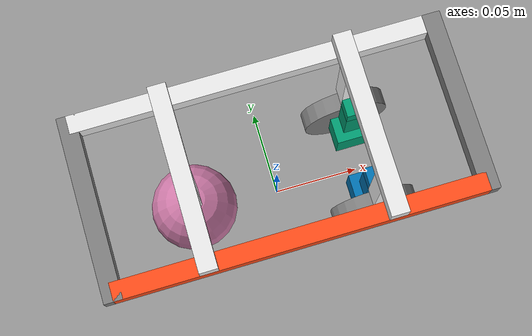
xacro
<?xml version="1.0"?>
<robot xmlns:xacro="http://www.ros.org/wiki/xacro" name="robot" >

	<xacro:include filename="robot_core.xacro" />

	<gazebo>
        <plugin name="gazebo_ros_control" filename="libgazebo_ros_control.so">
          <robotNamespace>/</robotNamespace>
        </plugin>
    </gazebo>

</robot>

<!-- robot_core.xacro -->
<robot xmlns:xacro="http://www.ros.org/wiki/xacro" >

	<xacro:include filename="inertial_macros.xacro" />

    <material name="white">
        <color rgba="1 1 1 1" />
    </material>

    <material name="orange">
        <color rgba="1 0.3 0.1 1"/>
    </material>

    <material name="blue">
        <color rgba="0.2 0.2 1 1"/>
    </material>

    <material name="black">
        <color rgba="0 0 0 1"/>
    </material>

    <material name="red">
        <color rgba="1 0 0 1"/>
    </material>

    <material name="grey">
        <color rgba="0.5 0.5 0.5 1"/>
    </material>

    <!-- Chassis -->

    <xacro:property name="chassis_length" value="0.2"/>
    <xacro:property name="chassis_width" value="0.1"/>
    <xacro:property name="chassis_thickness" value="0.01"/>
    <xacro:property name="front_base_length" value="0.05"/>
    <xacro:property name="back_base_length" value="0.05"/>
    <xacro:property name="a" value="0.02"/>

	<!-- Create fixed world frame -->

	<link name="world"></link>

	<joint name="world_joint" type="floating">
		<parent link="world"></parent>
		<child link="chassis"></child>
		<origin xyz="0 0 0.1"></origin>
	</joint>

    <link name="chassis">
		<visual>
            <geometry>
                <box size="${chassis_length} ${chassis_thickness} ${chassis_thickness}"/>
            </geometry>
            <material name="orange"/>
            <origin xyz="0 ${-chassis_width/2 +chassis_thickness/2} 0"/>
        </visual>
        <visual>
            <geometry>
                <box size="${chassis_length} ${chassis_thickness} ${chassis_thickness}"/>
            </geometry>
            <origin xyz="0 ${chassis_width/2 -chassis_thickness/2} 0"/>
        </visual>
        <visual>
            <geometry>
                <box size="${chassis_thickness} ${chassis_width} ${chassis_thickness}"/>
            </geometry>
            <material name="grey"/>
            <origin xyz="${-chassis_length/2} 0 0"/>
        </visual>
        <visual>
            <geometry>
                <box size="${chassis_thickness} ${chassis_width} ${chassis_thickness}"/>
            </geometry>
            <material name="grey"/>
            <origin xyz="${chassis_length/2} 0 0"/>
        </visual>
        <visual>
            <geometry>
                <box size="${chassis_thickness} ${chassis_width} ${chassis_thickness}"/>
            </geometry>
            <origin xyz="${front_base_length} 0 ${chassis_thickness}"/>
        </visual>
        <visual>
            <geometry>
                <box size="${chassis_thickness} ${chassis_width} ${chassis_thickness}"/>
            </geometry>
            <origin xyz="${-back_base_length} 0 ${chassis_thickness}"/>
        </visual>
        <inertial>
			<mass value="1"/>
			<inertia ixx="1e-3" ixy="0.0" ixz="0.0" iyy="1e-3" iyz="0.0" izz="1e-3"/>
		</inertial>
    </link>

    <gazebo reference="chassis">
		<material>Gazebo/White</material>
    </gazebo>

    <xacro:property name="l1" value="0.04"/>
    <xacro:property name="l2" value="0.01"/>
    <xacro:property name="l3" value="0.025"/>
    <xacro:property name="thickness" value="0.01"/>
    <xacro:property name="motor_side" value="0.02"/>

    <!-- Left_wheel_base-->

    <link name="left_wheel_base">
        <visual>
            <geometry>
                <box size="${l1} ${thickness} ${thickness}" />
            </geometry>
            <origin xyz="${-l1/2} 0 0"/>
            <material name="white"/>
        </visual>
        <xacro:inertial_box mass="0.5" x="0.3" y="0.3" z="0.15">
			<origin xyz="0 ${-chassis_width/2 +chassis_thickness/2} 0" rpy="0 0 0"/>
        </xacro:inertial_box>
        <visual>
            <geometry>
                <box size="${thickness} ${l2} ${thickness}"/>
            </geometry>
            <origin xyz="${-l1+thickness/2} ${-l2/2-thickness/2} 0.0" rpy="0.0 0.0 0.0"/>
        </visual>
        <visual>
            <geometry>
                <box size="${l3} ${thickness} ${thickness}"/>
            </geometry>
            <origin xyz="${-l1-l3/2} ${-l2} 0.0" rpy="0.0 0.0 0.0"/>
        </visual>
        <visual>
            <geometry>
                <box size="${motor_side} ${motor_side} ${motor_side}"/>
            </geometry>
            <origin xyz="${-l1-l3-motor_side/2} ${-l2} 0.0" rpy="0.0 0.0 0.0"/>

        </visual>
        <inertial>
			<mass value="1"/>
			<inertia ixx="1e-3" ixy="0.0" ixz="0.0" iyy="1e-3" iyz="0.0" izz="1e-3"/>
		</inertial>
    </link>

    <gazebo reference="left_wheel_base_joint">
		<material>Gazebo/Blue</material>
    </gazebo>

    <joint name="left_wheel_base_joint" type="continuous">
        <parent link="chassis"/>
        <child link="left_wheel_base"/>
        <origin xyz="${front_base_length} ${chassis_width/2-a} ${chassis_thickness/2}" rpy="0.0 ${-pi/2} 0.0"/>

    </joint>

    <!-- Left_wheel-->

    <xacro:property name="wheel_radius" value="0.025"/>
    <xacro:property name="wheel_length" value="0.01"/>

    <link name="left_wheel">
        <visual>
            <geometry>
                <box size="${thickness} ${l2-wheel_length/2-motor_side/2} ${thickness}"/>
            </geometry>
            <origin xyz="0 ${-(l2-wheel_length/2-motor_side/2+wheel_length)/2} 0"/>
			<material name="grey"/>

        </visual>
        <visual>
            <geometry>
                <cylinder radius="${wheel_radius}" length="${wheel_length}"/>
            </geometry>
            <origin xyz="0 0 0.0" rpy="${pi/2} 0.0 0.0"/>
			<material name="grey"/>
        </visual>
    </link>

    <joint name="left_wheel_joint" type="continuous">
        <parent link="left_wheel_base"/>
        <child link="left_wheel"/>
        <origin xyz="${-l1-l3-motor_side/2} ${0} 0"/>
        <axis xyz="0 1 0"/>

    </joint>

    <!-- right_wheel_base-->

    <link name="right_wheel_base">
        <visual>
            <geometry>
                <box size="${l1} ${thickness} ${thickness}" />
            </geometry>
            <origin xyz="${-l1/2} 0 0"/>
            <material name="white"/>
        </visual>
        <xacro:inertial_box mass="0.5" x="0.3" y="0.3" z="0.15">
			<origin xyz="0 ${-chassis_width/2 +chassis_thickness/2} 0" rpy="0 0 0"/>
        </xacro:inertial_box>
        <visual>
            <geometry>
                <box size="${thickness} ${l2} ${thickness}"/>
            </geometry>
            <origin xyz="${-l1+thickness/2} ${-l2/2-thickness/2} 0.0" rpy="0.0 0.0 0.0"/>
        </visual>
        <visual>
            <geometry>
                <box size="${l3} ${thickness} ${thickness}"/>
            </geometry>
            <origin xyz="${-l1-l3/2} ${-l2} 0.0" rpy="0.0 0.0 0.0"/>
        </visual>
        <visual>
            <geometry>
                <box size="${motor_side} ${motor_side} ${motor_side}"/>
            </geometry>
            <origin xyz="${-l1-l3-motor_side/2} ${-l2} 0.0" rpy="0.0 0.0 0.0"/>

        </visual>
        <inertial>
			<mass value="1"/>
			<inertia ixx="1e-3" ixy="0.0" ixz="0.0" iyy="1e-3" iyz="0.0" izz="1e-3"/>
		</inertial>
    </link>

    <gazebo reference="right_wheel_base_joint">
		<material>Gazebo/Blue</material>
    </gazebo>

    <joint name="right_wheel_base_joint" type="continuous">
        <parent link="chassis"/>
        <child link="right_wheel_base"/>
        <origin xyz="${front_base_length} ${-chassis_width/2+a} ${chassis_thickness/2}" rpy="0.0 ${-pi/2} ${pi}"/>

    </joint>

    <!-- right_wheel-->

    <link name="right_wheel">
        <visual>
            <geometry>
                <box size="${thickness} ${l2-wheel_length/2-motor_side/2} ${thickness}"/>
            </geometry>
            <origin xyz="0 ${-(l2-wheel_length/2-motor_side/2+wheel_length)/2} 0"/>
            <material name="grey"/>
        </visual>
        <visual>
            <geometry>
                <cylinder radius="${wheel_radius}" length="${wheel_length}"/>
            </geometry>
            <origin xyz="0 0 0.0" rpy="${pi/2} 0.0 0.0"/>
            <material name="grey"/>
        </visual>
        <inertial>
			<mass value="1"/>
			<inertia ixx="1e-3" ixy="0.0" ixz="0.0" iyy="1e-3" iyz="0.0" izz="1e-3"/>
		</inertial>

    </link>

    <gazebo reference="right_wheel">
		<material>Gazebo/Black</material>
    </gazebo>

    <joint name="right_wheel_joint" type="continuous">
        <parent link="right_wheel_base"/>
        <child link="right_wheel"/>
        <origin xyz="${-l1-l3-motor_side/2} ${0} 0"/>
        <axis xyz="0 1 0"/>

    </joint>

    <!-- castor wheel-->

    <link name="castor_wheel">
		<visual>
			<geometry>
				<box size="${thickness} ${thickness} ${l1+l3}"/>
			</geometry>
			<material name="white"/>
		</visual>
		<visual>
			<geometry>
				<sphere radius="${wheel_radius}"/>
			</geometry>
			<origin xyz="0 0 ${-(l1+l3)/2-wheel_radius+motor_side/4}"/>
		</visual>
    </link>

	<joint name="castor_joint" type="fixed">
		<parent link="chassis"></parent>
		<child link="castor_wheel"></child>
        <origin xyz="${-front_base_length} 0 ${-2*chassis_thickness}" />
	</joint>

</robot>
